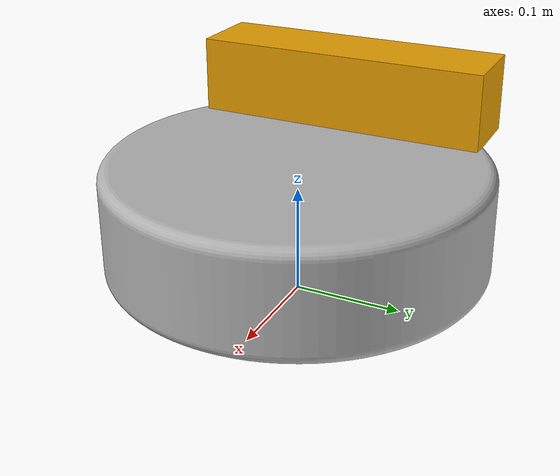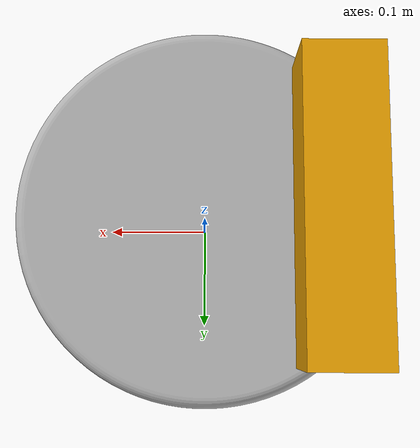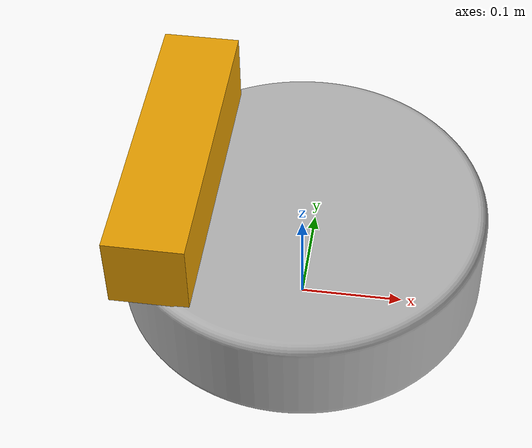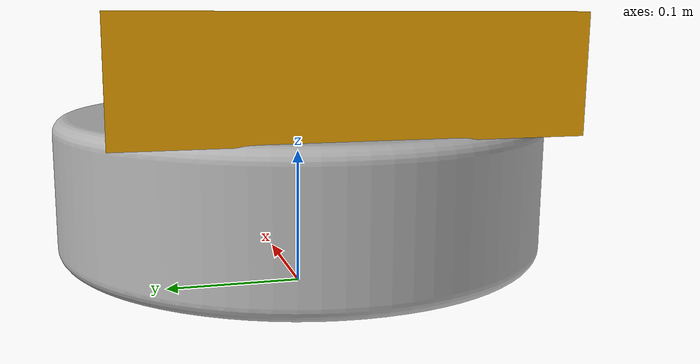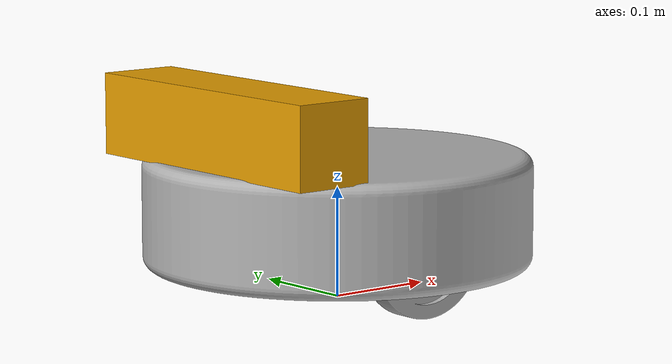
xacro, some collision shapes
<?xml version="1.0"?>
<!--
    - Base      : hase
    - Stacks    : hexagons
    - 3d Sensor : kinect
-->
<robot name="hase"
       xmlns:xacro="http://ros.org/wiki/xacro">

  <xacro:include filename="$(find hase_description)/urdf/hase.urdf.xacro" />
  <xacro:include filename="$(find hase_description)/urdf/sensors/kinect.urdf.xacro"/>

  <property name="cam_px" value="-0.087" />
  <property name="cam_py" value="-0.0125" />
  <property name="cam_pz" value="0.1560" />
  <property name="cam_or" value="0" />
  <property name="cam_op" value="0" />
  <property name="cam_oy" value="0" />

  <hase/>
  <sensor_kinect  parent="base_link"/>
</robot>

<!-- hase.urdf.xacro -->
<robot name="hase" xmlns:xacro="http://ros.org/wiki/xacro">
  <xacro:include filename="$(find hase_description)/urdf/common_properties.urdf.xacro"/>
  <xacro:include filename="$(find hase_description)/urdf/hase_gazebo.urdf.xacro"/>

  <!-- Hase -->
  <xacro:macro name="hase">
    <link name="base_footprint"/>
    <joint name="base_joint" type="fixed">
      <origin xyz="0 0 0.0252" rpy="0 0 0" />
      <parent link="base_footprint"/>
      <child link="base_link" />
    </joint>
    <link name="base_link">
      <visual>
        <geometry>
          <mesh filename="package://hase_description/meshes/base.dae" scale=".001 .001 .001"/>
        </geometry>
        <origin xyz="0 0 0.0548" rpy="0 0 0"/>
      </visual>
      <collision>
        <geometry>
          <cylinder length="0.1" radius="0.178"/>
        </geometry>
        <origin xyz="0.0 0 0.0548" rpy="0 0 0"/>
      </collision>
      <inertial>
        <!-- COM experimentally determined -->
        <origin xyz="0 0 0"/>
        <mass value="2.4"/> <!-- 2.4/2.6 kg for small/big battery pack -->
        <inertia ixx="0.019995" ixy="0.0" ixz="0.0"
                 iyy="0.019995" iyz="0.0"
                 izz="0.03675" />
      </inertial>
    </link>

    <joint name="wheel_left_joint" type="continuous">
      <parent link="base_link"/>
      <child link="wheel_left_link"/>
      <origin xyz="0.00 ${0.23/2} 0.0363" rpy="${-M_PI/2} 0 0"/>
      <axis xyz="0 0 1"/>
    </joint>
    <link name="wheel_left_link">
      <visual>
        <geometry>
          <mesh filename="package://hase_description/meshes/wheel.dae" scale=".001 .001 .001"/>
        </geometry>
        <origin xyz="0 0 0" rpy="0 0 0"/>
      </visual>
      <collision>
        <geometry>
          <cylinder length="0.0205" radius="0.0615"/>
        </geometry>
        <origin rpy="0 0 0" xyz="0 0 0"/>
      </collision>
      <inertial>
        <mass value="0.1" />
        <origin xyz="0 0 0" />
        <inertia ixx="0.001" ixy="0.0" ixz="0.0"
                 iyy="0.001" iyz="0.0"
                 izz="0.001" />
      </inertial>
    </link>

    <joint name="wheel_right_joint" type="continuous">
      <parent link="base_link"/>
      <child link="wheel_right_link"/>
      <origin xyz="0.00 -${0.23/2} 0.0363" rpy="${-M_PI/2} 0 0"/>
      <axis xyz="0 0 1"/>
    </joint>
    <link name="wheel_right_link">
      <visual>
        <geometry>
          <mesh filename="package://hase_description/meshes/wheel.dae" scale=".001 .001 .001"/>
        </geometry>
        <origin xyz="0 0 0" rpy="0 0 0"/>
      </visual>
      <collision>
        <geometry>
          <cylinder length="0.0205" radius="0.0615"/>
        </geometry>
        <origin rpy="0 0 0" xyz="0 0 0"/>
      </collision>
      <inertial>
        <mass value="0.1" />
        <origin xyz="0 0 0" />
        <inertia ixx="0.001" ixy="0.0" ixz="0.0"
                 iyy="0.001" iyz="0.0"
                 izz="0.001" />
      </inertial>
    </link>

    <joint name="caster_front_joint" type="fixed">
      <parent link="base_link"/>
      <child link="caster_front_link"/>
      <origin xyz="0.115 0.0 0.015" rpy="${-M_PI/2} 0 0"/>
    </joint>
    <link name="caster_front_link">
      <collision>
        <geometry>
          <cylinder length="0.015" radius="0.04"/>
        </geometry>
        <origin rpy="0 0 0" xyz="0 0 0"/>
      </collision>
      <inertial>
        <mass value="0.01" />
        <origin xyz="0 0 0" />
        <inertia ixx="0.001" ixy="0.0" ixz="0.0"
                 iyy="0.001" iyz="0.0"
                 izz="0.001" />
      </inertial>
    </link>

    <joint name="caster_back_joint" type="fixed">
      <parent link="base_link"/>
      <child link="caster_back_link"/>
      <origin xyz="-0.115 0.0 0.015" rpy="${-M_PI/2} 0 0"/>
    </joint>
    <link name="caster_back_link">
      <collision>
        <geometry>
          <cylinder length="0.015" radius="0.04"/>
        </geometry>
        <origin rpy="0 0 0" xyz="0 0 0"/>
      </collision>
      <inertial>
        <mass value="0.01" />
        <origin xyz="0 0 0" />
        <inertia ixx="0.001" ixy="0.0" ixz="0.0"
                 iyy="0.001" iyz="0.0"
                 izz="0.001" />
      </inertial>
    </link>

    <!-- Hase Gazebo simulation details -->
    <hase_sim/>

  </xacro:macro>
</robot>

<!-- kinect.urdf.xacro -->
<robot name="sensor_kinect" xmlns:xacro="http://ros.org/wiki/xacro">
  <xacro:include filename="$(find hase_description)/urdf/hase_gazebo.urdf.xacro"/>

  <!-- Parameterised in part by the values in hase_properties.urdf.xacro -->
  <xacro:macro name="sensor_kinect" params="parent">
    <joint name="camera_rgb_joint" type="fixed">
      <origin xyz="${cam_px} ${cam_py} ${cam_pz}" rpy="${cam_or} ${cam_op} ${cam_oy}"/>
      <parent link="${parent}"/>
      <child link="camera_rgb_frame" />
    </joint>
    <link name="camera_rgb_frame">
      <inertial>
        <mass value="0.001" />
        <origin xyz="0 0 0" />
        <inertia ixx="0.0001" ixy="0.0" ixz="0.0"
                 iyy="0.0001" iyz="0.0"
                 izz="0.0001" />
      </inertial>
    </link>
    <joint name="camera_rgb_optical_joint" type="fixed">
      <origin xyz="0 0 0" rpy="${-M_PI/2} 0 ${-M_PI/2}" />
      <parent link="camera_rgb_frame" />
      <child link="camera_rgb_optical_frame" />
    </joint>
    <link name="camera_rgb_optical_frame">
      <inertial>
        <mass value="0.001" />
        <origin xyz="0 0 0" />
        <inertia ixx="0.0001" ixy="0.0" ixz="0.0"
                 iyy="0.0001" iyz="0.0"
                 izz="0.0001" />
      </inertial>
    </link>

  <joint name="camera_joint" type="fixed">
    <origin xyz="-0.031 ${-cam_py} -0.016" rpy="0 0 0"/>
    <parent link="camera_rgb_frame"/>
    <child link="camera_link"/>
  </joint>
    <link name="camera_link">
    <visual>
     <origin xyz="0 0 0" rpy="0 0 ${M_PI/2}"/>
      <geometry>
       <mesh filename="package://hase_description/meshes/sensors/kinect.dae"/>
      </geometry>
    </visual>
	  <collision>
      <origin xyz="0.0 0.0 0.0" rpy="0 0 0"/>
	    <geometry>
	      <box size="0.07271 0.27794 0.073"/>
	    </geometry>
	  </collision>
    <inertial>
      <mass value="0.001" />
      <origin xyz="0 0 0" />
      <inertia ixx="0.0001" ixy="0.0" ixz="0.0"
               iyy="0.0001" iyz="0.0"
               izz="0.0001" />
    </inertial>
  </link>

	<joint name="camera_depth_joint" type="fixed">
	  <origin xyz="0 ${2 * -cam_py} 0" rpy="0 0 0" />
	  <parent link="camera_rgb_frame" />
	  <child link="camera_depth_frame" />
	</joint>
	<link name="camera_depth_frame">
    <inertial>
      <mass value="0.001" />
      <origin xyz="0 0 0" />
      <inertia ixx="0.0001" ixy="0.0" ixz="0.0"
               iyy="0.0001" iyz="0.0"
               izz="0.0001" />
    </inertial>
	</link>
	<joint name="camera_depth_optical_joint" type="fixed">
	  <origin xyz="0 0 0" rpy="${-M_PI/2} 0 ${-M_PI/2}" />
	  <parent link="camera_depth_frame" />
	  <child link="camera_depth_optical_frame" />
	</joint>
	<link name="camera_depth_optical_frame">
    <inertial>
      <mass value="0.001" />
      <origin xyz="0 0 0" />
      <inertia ixx="0.0001" ixy="0.0" ixz="0.0"
               iyy="0.0001" iyz="0.0"
               izz="0.0001" />
    </inertial>
	</link>

	<!-- Kinect sensor for simulation -->
	<hase_sim_3dsensor/>
  </xacro:macro>
</robot>
